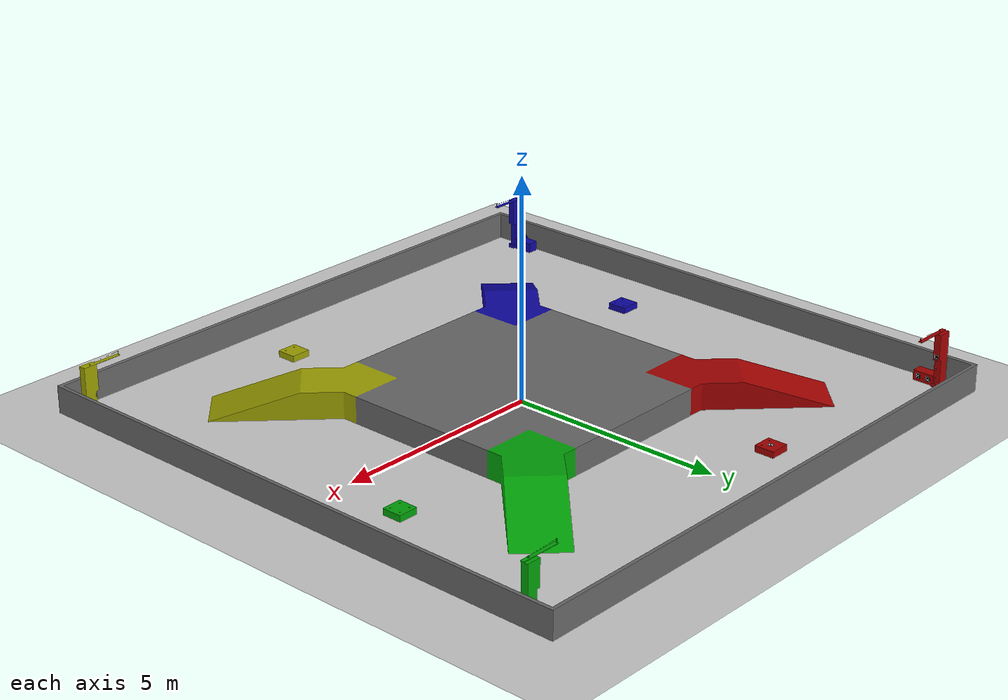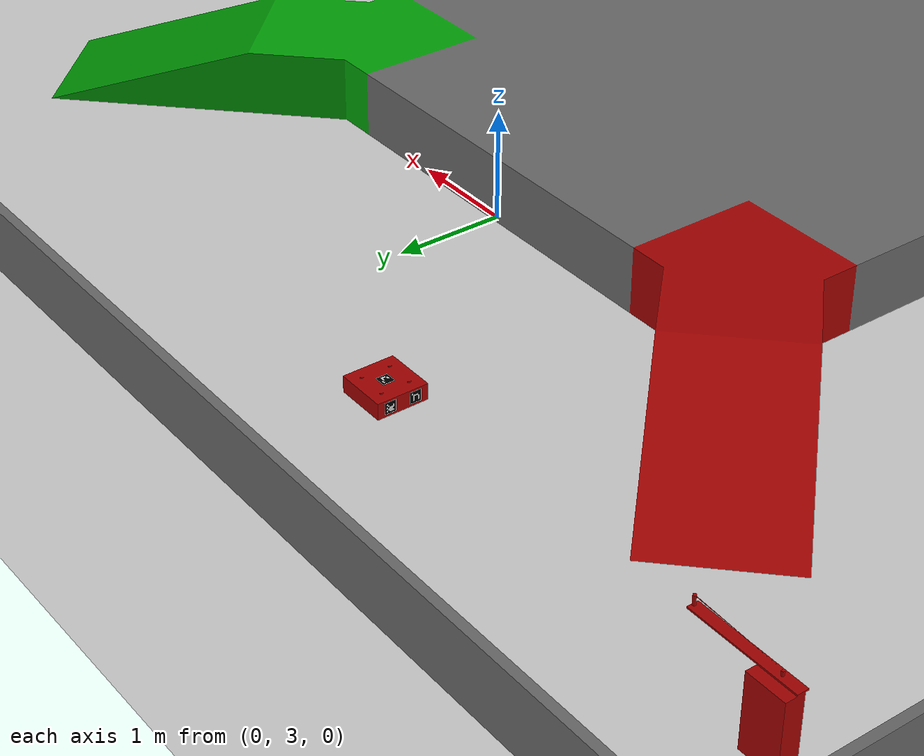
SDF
<?xml version="1.0"?>
<sdf version="1.4">
  <world name="mrdc">
    <include>
      <uri>model://ground_plane</uri>
    </include>

	<light type="directional" name="sun">
		<cast_shadows>false</cast_shadows>
	</light>

  <!-- Gazebo doesn't model light diffusion, so we need some extra light sources
       to make sure everything is evenly lit -->
  <light type="point" name="overhead_1">
    <pose>5 5 5 0 0 0</pose>
    <diffuse>.9 .9 .9 1</diffuse>
    <specular>.1 .1 .1 1</specular>
    <attenuation>
      <range>20</range>
      <linear>0.2</linear>
      <constant>0.8</constant>
    </attenuation>
    <cast_shadows>true</cast_shadows>
  </light>
  <light type="point" name="overhead_2">
    <pose>5 -5 5 0 0 0</pose>
    <diffuse>.9 .9 .9 1</diffuse>
    <specular>.1 .1 .1 1</specular>
    <attenuation>
      <range>20</range>
      <linear>0.2</linear>
      <constant>0.8</constant>
    </attenuation>
    <cast_shadows>true</cast_shadows>
  </light>
  <light type="point" name="overhead_3">
    <pose>-5 5 5 0 0 0</pose>
    <diffuse>.9 .9 .9 1</diffuse>
    <specular>.1 .1 .1 1</specular>
    <attenuation>
      <range>20</range>
      <linear>0.2</linear>
      <constant>0.8</constant>
    </attenuation>
    <cast_shadows>true</cast_shadows>
  </light>
  <light type="point" name="overhead_4">
    <pose>-5 -5 5 0 0 0</pose>
    <diffuse>.9 .9 .9 1</diffuse>
    <specular>.1 .1 .1 1</specular>
    <attenuation>
      <range>20</range>
      <linear>0.2</linear>
      <constant>0.8</constant>
    </attenuation>
    <cast_shadows>true</cast_shadows>
  </light>

    <model name="field">
      <static>true</static>
      <link name="platform">
        <visual name="visual">
          <geometry>
            <mesh>
              <uri>file://meshes/mrdc/2018/platform.dae</uri>
            </mesh>
          </geometry>
        </visual>
        <collision name="collision">
          <geometry>
            <mesh>
              <uri>file://meshes/mrdc/2018/platform.dae</uri>
            </mesh>
          </geometry>
        </collision>
      </link>
      <link name="wall">
        <visual name="visual">
          <geometry>
            <mesh>
              <uri>file://meshes/mrdc/2018/wall.dae</uri>
            </mesh>
          </geometry>
        </visual>
        <collision name="collision">
          <geometry>
            <mesh>
              <uri>file://meshes/mrdc/2018/wall.dae</uri>
            </mesh>
          </geometry>
        </collision>
      </link>
      <link name="elements">
        <visual name="visual">
          <geometry>
            <mesh>
              <uri>file://meshes/mrdc/2018/elements.dae</uri>
            </mesh>
          </geometry>
        </visual>
        <collision name="collision">
          <geometry>
            <mesh>
              <uri>file://meshes/mrdc/2018/elements.dae</uri>
            </mesh>
          </geometry>
        </collision>
      </link>
      <link name="aruco_1024">
		<pose>-6.343 6.052 0.6985 0 0 0</pose>
        <visual name="visual">
          <geometry>
            <mesh>
                <uri>file://meshes/markers/aruco_1024.dae</uri>
            </mesh>
          </geometry>
        </visual>
      </link>
      <link name="aruco_928">
		<pose>-1.5805 5.2646 0.14605 0 -1.57079 3.14159</pose>
        <visual name="visual">
          <geometry>
            <mesh>
                <uri>file://meshes/markers/aruco_928.dae</uri>
            </mesh>
          </geometry>
        </visual>
      </link>
      <link name="aruco_234">
		<pose>-1.8091 5.1503 0.073026 0 0 3.14159</pose>
        <visual name="visual">
          <geometry>
            <mesh>
                <uri>file://meshes/markers/aruco_234.dae</uri>
            </mesh>
          </geometry>
        </visual>
      </link>
      <link name="aruco_157">
		<pose>-1.8091 5.3789 0.073026 0 0 3.14159</pose>
        <visual name="visual">
          <geometry>
            <mesh>
                <uri>file://meshes/markers/aruco_157.dae</uri>
            </mesh>
          </geometry>
        </visual>
      </link>
      <link name="aruco_133">
		<pose>-6.3938 5.8551 0.11430 0 0 0</pose>
        <visual name="visual">
          <geometry>
            <mesh>
                <uri>file://meshes/markers/aruco_133.dae</uri>
            </mesh>
          </geometry>
        </visual>
      </link>
      <link name="aruco_113">
		<pose>-6.3938 5.6138 0.11430 0 0 0</pose>
        <visual name="visual">
          <geometry>
            <mesh>
                <uri>file://meshes/markers/aruco_113.dae</uri>
            </mesh>
          </geometry>
        </visual>
      </link>
    </model>
  </world>
</sdf>
